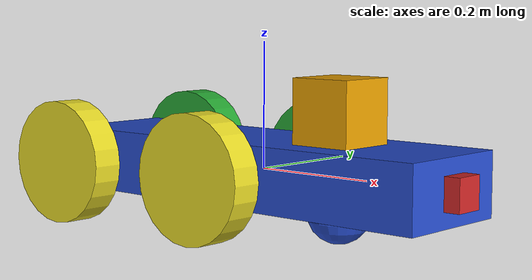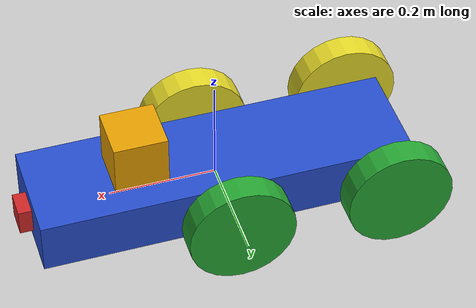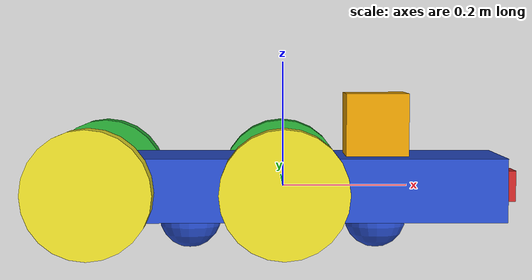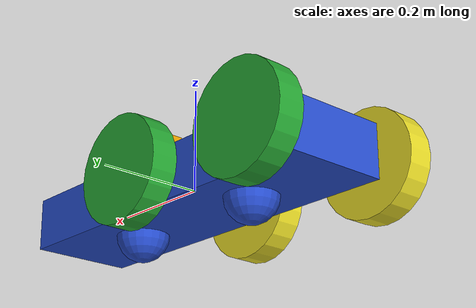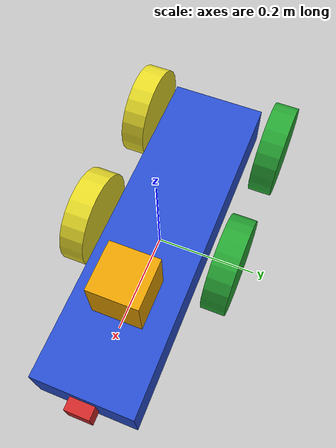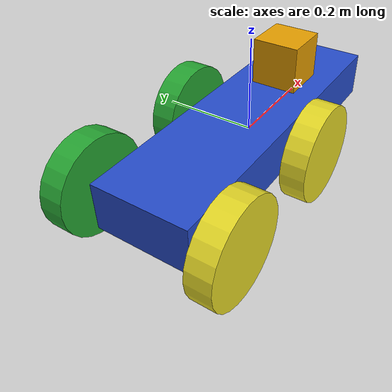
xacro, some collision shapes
<?xml version='1.0'?>

<robot name="my_robot" xmlns:xacro="http://www.ros.org/wiki/xacro">

  <link name="robot_footprint"></link>

  <joint name="robot_footprint_joint" type="fixed">
    <origin xyz="0 0 0" rpy="0 0 0" />
    <parent link="robot_footprint"/>
    <child link="chassis" />
  </joint>

  <link name='chassis'>
    <pose>0 0 0.1 0 0 0</pose>

    <inertial>
      <mass value="15.0"/>
      <origin xyz="0.0 0 0" rpy=" 0 0 0"/>
      <inertia
          ixx="0.1" ixy="0" ixz="0"
          iyy="0.1" iyz="0"
          izz="0.1"
      />
    </inertial>

    <collision name='collision'>
      <origin xyz="0 0 0" rpy=" 0 0 0"/>
      <geometry>
        <box size="0.7 .2 .1"/>
      </geometry>
    </collision>

    <visual name='chassis_visual'>
      <origin xyz="0 0 0" rpy=" 0 0 0"/>
      <geometry>
        <box size="0.7 .2 .1"/>
      </geometry>
    </visual>

    <collision name='back_caster_collision'>
      <origin xyz="-0.15 0 -0.05" rpy=" 0 0 0"/>
      <geometry>
        <sphere radius="0.0499"/>
      </geometry>
    </collision>

    <visual name='back_caster_visual'>
      <origin xyz="-0.15 0 -0.05" rpy=" 0 0 0"/>
      <geometry>
        <sphere radius="0.05"/>
      </geometry>
    </visual>

    <collision name='front_caster_collision'>
      <origin xyz="0.15 0 -0.05" rpy=" 0 0 0"/>
      <geometry>
        <sphere radius="0.0499"/>
      </geometry>
    </collision>

    <visual name='front_caster_visual'>
      <origin xyz="0.15 0 -0.05" rpy=" 0 0 0"/>
      <geometry>
        <sphere radius="0.05"/>
      </geometry>
    </visual>

  </link>

  <link name="left_front_wheel">
	  <inertial>
		  <mass value="5.0" />
		  <origin xyz="0 0 0" rpy="0 1.5707 1.5707" />
		  <inertia ixx="0.1" ixy="0" ixz="0"
    			    iyy="0.1" iyz="0"
    			    izz="0.1"/>
	  </inertial>
	  <visual>
		  <origin xyz="0 0 0" rpy="0 1.5707 1.5707" />
		  <geometry>
			  <cylinder radius="0.1" length="0.05" />
		  </geometry>
	  </visual>
	  <collision>
		  <origin xyz="0 0 0" rpy="0 1.5707 1.5707" />
		  <geometry>
			  <cylinder radius="0.1" length="0.05" />
		  </geometry>
	  </collision>
  </link>
  <joint type="continuous" name="left_front_wheel_hinge">
    <origin xyz="0 0.15 0" rpy="0 0 0"/>
    <child link="left_front_wheel"/>
    <parent link="chassis"/>
    <axis xyz="0 1 0" rpy="0 0 0"/>
    <limit effort="10000" velocity="1000"/>
    <dynamics damping="1.0" friction="1.0"/>
  </joint>
  <link name="left_rear_wheel">
	  <inertial>
		  <mass value="5.0" />
		  <origin xyz="0 0 0" rpy="0 1.5707 1.5707" />
		  <inertia ixx="0.1" ixy="0" ixz="0"
    			    iyy="0.1" iyz="0"
    			    izz="0.1"/>
	  </inertial>
	  <visual>
		  <origin xyz="0 0 0" rpy="0 1.5707 1.5707" />
		  <geometry>
			  <cylinder radius="0.1" length="0.05" />
		  </geometry>
	  </visual>
	  <collision>
		  <origin xyz="0 0 0" rpy="0 1.5707 1.5707" />
		  <geometry>
			  <cylinder radius="0.1" length="0.05" />
		  </geometry>
	  </collision>
  </link>
  <joint type="continuous" name="left_rear_wheel_hinge">
    <origin xyz="-0.3 0.15 0" rpy="0 0 0"/>
    <child link="left_rear_wheel"/>
    <parent link="chassis"/>
    <axis xyz="0 1 0" rpy="0 0 0"/>
    <limit effort="10000" velocity="1000"/>
    <dynamics damping="1.0" friction="1.0"/>
  </joint>
  <link name="right_front_wheel">
	  <inertial>
		  <mass value="5.0"/>
		  <origin xyz="0 0 0" rpy="0 1.5707 1.5707"/>
		  <inertia ixx="0.1" ixy="0" ixz="0" iyy="0.1" iyz="0" izz="0.1"  />
	  </inertial>
	  <visual>
		  <origin xyz="0 0 0" rpy="0 1.5707 1.5707" />
		  <geometry>
			  <cylinder radius="0.1" length="0.05" />
		  </geometry>
	  </visual>
	  <collision>
		  <origin xyz="0 0 0" rpy="0 1.5707 1.5707" />
		  <geometry>
			  <cylinder radius="0.1" length="0.05" />
		  </geometry>
	  </collision>
  </link>
  <joint type="continuous" name="right_front_wheel_hinge">
    <origin xyz="0 -0.15 0" rpy="0 0 0"/>
    <child link="right_front_wheel"/>
    <parent link="chassis"/>
    <axis xyz="0 1 0" rpy="0 0 0"/>
    <limit effort="10000" velocity="1000"/>
    <dynamics damping="1.0" friction="1.0"/>
  </joint>
  <link name="right_rear_wheel">
	  <inertial>
		  <mass value="5.0"/>
		  <origin xyz="0 0 0" rpy="0 1.5707 1.5707"/>
		  <inertia ixx="0.1" ixy="0" ixz="0" iyy="0.1" iyz="0" izz="0.1"  />
	  </inertial>
	  <visual>
		  <origin xyz="0 0 0" rpy="0 1.5707 1.5707" />
		  <geometry>
			  <cylinder radius="0.1" length="0.05" />
		  </geometry>
	  </visual>
	  <collision>
		  <origin xyz="0 0 0" rpy="0 1.5707 1.5707" />
		  <geometry>
			  <cylinder radius="0.1" length="0.05" />
		  </geometry>
	  </collision>
  </link>
  <joint type="continuous" name="right_rear_wheel_hinge">
    <origin xyz="-0.3 -0.15 0" rpy="0 0 0"/>
    <child link="right_rear_wheel"/>
    <parent link="chassis"/>
    <axis xyz="0 1 0" rpy="0 0 0"/>
    <limit effort="10000" velocity="1000"/>
    <dynamics damping="1.0" friction="1.0"/>
  </joint>
	  <xacro:property name="cameraSize" value="0.05"/>
  <xacro:property name="cameraMass" value="0.1"/>
  <!-- camera -->
	    <link name="camera">
    <collision>
      <origin xyz="0 0 0" rpy="0 0 0"/>
      <geometry>
        <box size="${cameraSize} ${cameraSize} ${cameraSize}"/>
      </geometry>
    </collision>

    <visual>
      <origin xyz="0 0 0" rpy="0 0 0"/>
      <geometry>
        <box size="${cameraSize} ${cameraSize} ${cameraSize}"/>
      </geometry>
      <!--material name="green"/-->
    </visual>

    <inertial>
      <mass value="${cameraMass}" />
      <origin xyz="0 0 0" rpy="0 0 0"/>
      <box_inertia m="${cameraMass}" x="${cameraSize}" y="${cameraSize}" z="${cameraSize}" />
      <inertia ixx="1e-6" ixy="0" ixz="0" iyy="1e-6" iyz="0" izz="1e-6" />
    </inertial>
  </link>

  <joint name="camera_joint" type="fixed">
    <axis xyz="0 1 0" />
    <origin xyz="0.35 0 0" rpy="0 0 0"/>
    <parent link="chassis"/>
    <child link="camera"/>
  </joint>
<joint name="camera_optical_joint" type="fixed">
    <origin xyz="0 0 0" rpy="-1.5707 0 -1.5707"/>
    <parent link="camera"/>
    <child link="camera_link_optical"/>
  </joint>

  <link name="camera_link_optical">
  </link>

	  <joint name="hokuyo_joint" type="fixed">
    <axis xyz="0 1 0" />
    <origin xyz=".15 0 .1" rpy="0 0 0"/>
    <parent link="chassis"/>
    <child link="hokuyo"/>
  </joint>

  <!-- Hokuyo Laser -->
  <link name="hokuyo">
    <collision>
      <origin xyz="0 0 0" rpy="0 0 0"/>
      <geometry>
    <box size="0.1 0.1 0.1"/>
      </geometry>
    </collision>

    <visual>
      <origin xyz="0 0 0" rpy="0 0 0"/>
      <geometry>
        <mesh filename="package://my_robot/meshes/hokuyo.dae"/>
      </geometry>
    </visual>

    <inertial>
      <mass value="1e-5" />
      <origin xyz="0 0 0" rpy="0 0 0"/>
      <inertia ixx="1e-6" ixy="0" ixz="0" iyy="1e-6" iyz="0" izz="1e-6" />
    </inertial>
  </link>
	  <gazebo reference="left_front_wheel">
    <material>Gazebo/Green</material>
</gazebo>
	  <gazebo reference="left_rear_wheel">
    <material>Gazebo/Green</material>
</gazebo>
	<gazebo reference="right_front_wheel">
    <material>Gazebo/Yellow</material>
</gazebo>
	<gazebo reference="right_rear_wheel">
    <material>Gazebo/Yellow</material>
</gazebo>
	<gazebo reference="camera">
    <material>Gazebo/Red</material>
</gazebo>
	<gazebo reference="chassis">
    <material>Gazebo/Blue</material>
</gazebo>
	<xacro:include filename="$(find my_robot)/urdf/my_robot.gazebo" />
</robot>
